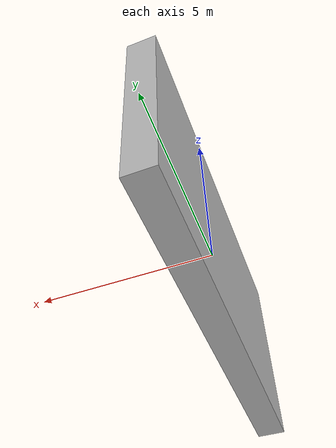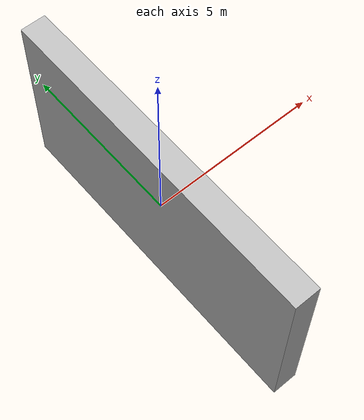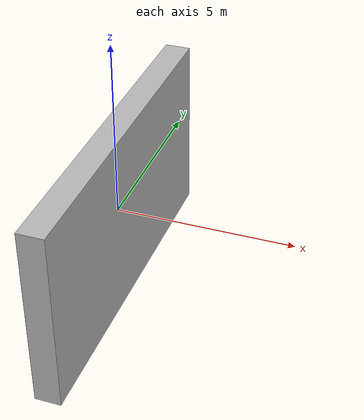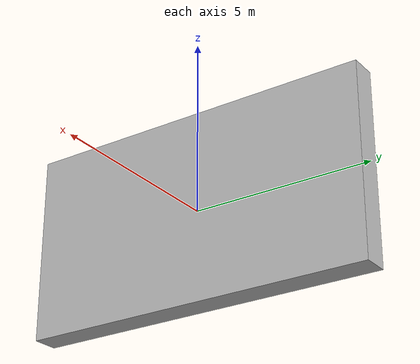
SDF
<?xml version="1.0" ?>
<sdf version="1.5">
  <model name="Trees Picture">
    <static>true</static>
    <link name="link">
      <collision name="collision">
        <geometry>
          <mesh>
            <uri>model://trees/meshes/trees.dae</uri>
          </mesh>
        </geometry>
      </collision>
      <visual name="visual">
        <geometry>
          <mesh>
            <uri>model://trees/meshes/trees.dae</uri>
          </mesh>
        </geometry>
      </visual>
    </link>
  </model>
</sdf>
